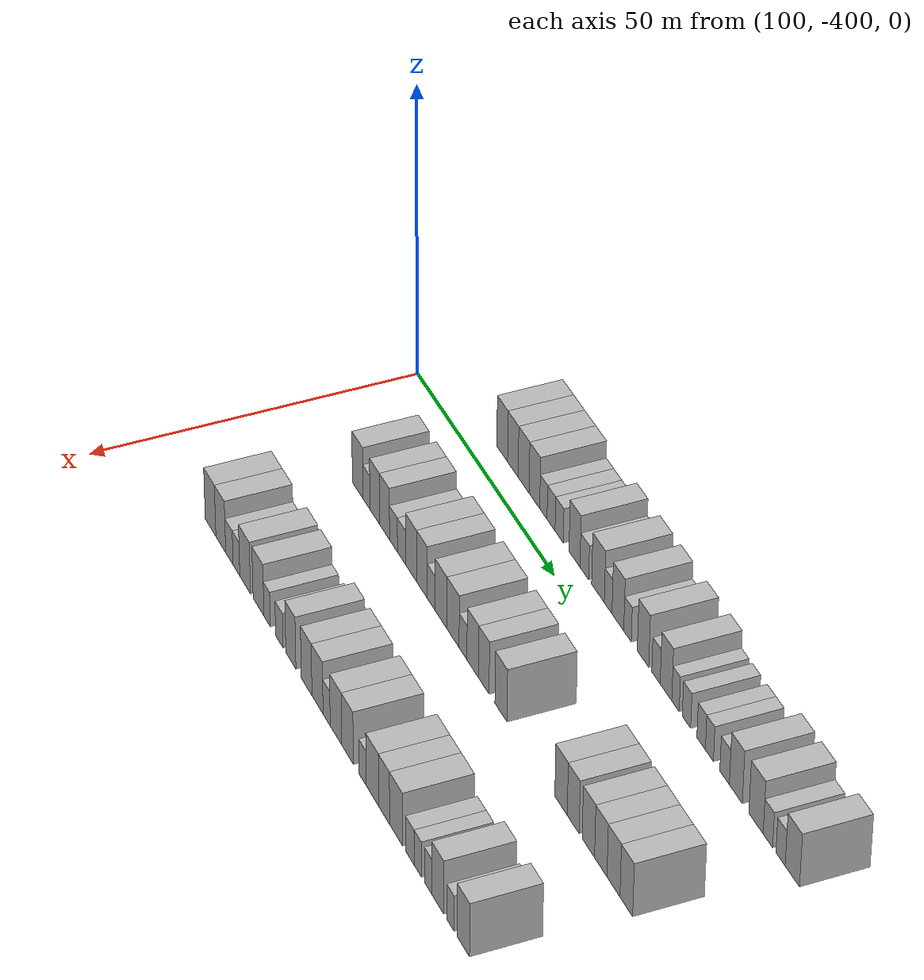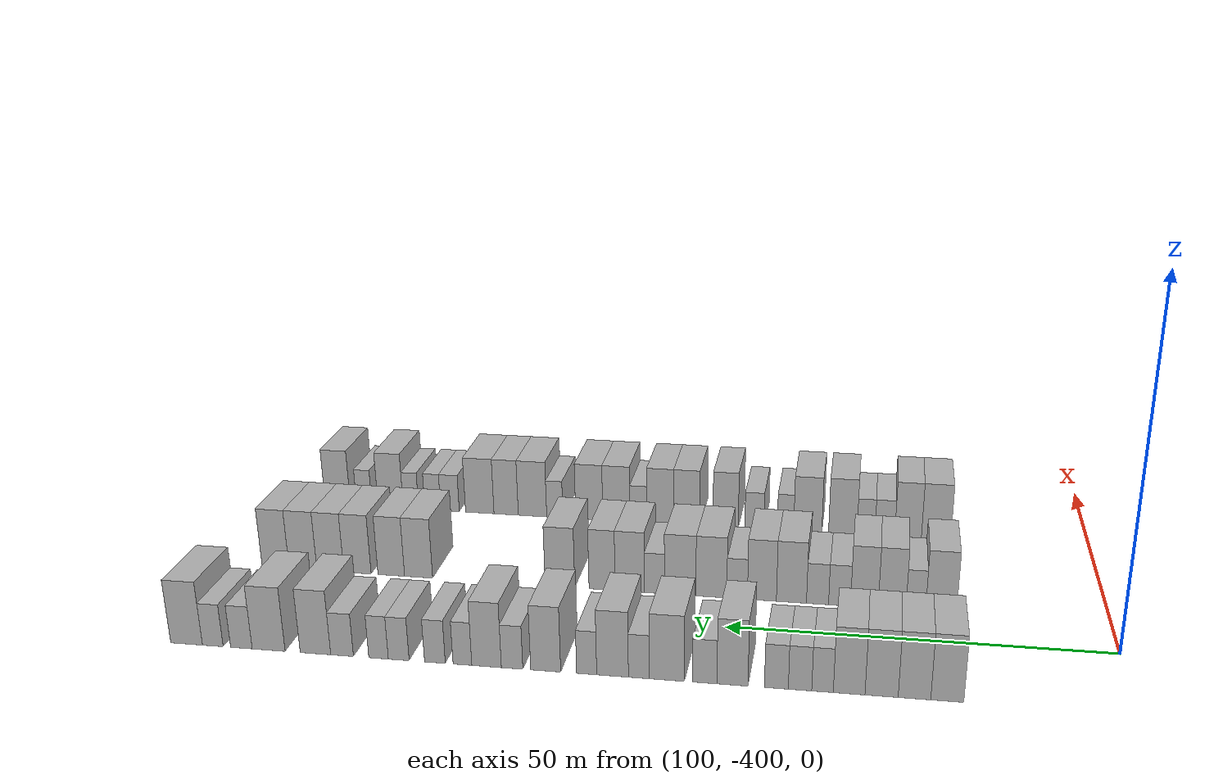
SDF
<sdf version="1.6">
 <world name="default">
  <model name="building_565">
   <static>1</static>
   <pose>91.0000 -378.0604 0 0.000000 0.000000 0.000000</pose>
   <link name="link">
    <pose>0 0 4.50 0 0 0</pose>
    <collision name="collision"><geometry><box><size>10.0000 3.8792 9.0000</size></box></geometry></collision>
    <visual name="visual">
     <cast_shadows>0</cast_shadows>
     <geometry><box><size>10.0000 3.8792 9.0000</size></box></geometry>
     <material>
      <script>
       <uri>model://HANNAS_wall/materials/scripts</uri>
       <uri>model://HANNAS_wall/materials/textures</uri>
       <name>vrc/HANNAS_wall</name>
      </script>
     </material>
    </visual>
   </link>
  </model>
  <model name="building_566">
   <static>1</static>
   <pose>91.0000 -374.2001 0 0.000000 0.000000 0.000000</pose>
   <link name="link">
    <pose>0 0 4.50 0 0 0</pose>
    <collision name="collision"><geometry><box><size>10.0000 3.8414 9.0000</size></box></geometry></collision>
    <visual name="visual">
     <cast_shadows>0</cast_shadows>
     <geometry><box><size>10.0000 3.8414 9.0000</size></box></geometry>
     <material>
      <script>
       <uri>model://HANNAS_wall/materials/scripts</uri>
       <uri>model://HANNAS_wall/materials/textures</uri>
       <name>vrc/HANNAS_wall</name>
      </script>
     </material>
    </visual>
   </link>
  </model>
  <model name="building_567">
   <static>1</static>
   <pose>91.0000 -370.3114 0 0.000000 0.000000 0.000000</pose>
   <link name="link">
    <pose>0 0 4.50 0 0 0</pose>
    <collision name="collision"><geometry><box><size>10.0000 3.9360 9.0000</size></box></geometry></collision>
    <visual name="visual">
     <cast_shadows>0</cast_shadows>
     <geometry><box><size>10.0000 3.9360 9.0000</size></box></geometry>
     <material>
      <script>
       <uri>model://HANNAS_wall/materials/scripts</uri>
       <uri>model://HANNAS_wall/materials/textures</uri>
       <name>vrc/HANNAS_wall</name>
      </script>
     </material>
    </visual>
   </link>
  </model>
  <model name="building_568">
   <static>1</static>
   <pose>91.0000 -366.4540 0 0.000000 0.000000 0.000000</pose>
   <link name="link">
    <pose>0 0 4.50 0 0 0</pose>
    <collision name="collision"><geometry><box><size>10.0000 3.7787 9.0000</size></box></geometry></collision>
    <visual name="visual">
     <cast_shadows>0</cast_shadows>
     <geometry><box><size>10.0000 3.7787 9.0000</size></box></geometry>
     <material>
      <script>
       <uri>model://HANNAS_wall/materials/scripts</uri>
       <uri>model://HANNAS_wall/materials/textures</uri>
       <name>vrc/HANNAS_wall</name>
      </script>
     </material>
    </visual>
   </link>
  </model>
  <model name="building_569">
   <static>1</static>
   <pose>91.0000 -363.2710 0 0.000000 0.000000 0.000000</pose>
   <link name="link">
    <pose>0 0 3.00 0 0 0</pose>
    <collision name="collision"><geometry><box><size>10.0000 2.5874 6.0000</size></box></geometry></collision>
    <visual name="visual">
     <cast_shadows>0</cast_shadows>
     <geometry><box><size>10.0000 2.5874 6.0000</size></box></geometry>
     <material>
      <script>
       <uri>model://HANNAS_wall/materials/scripts</uri>
       <uri>model://HANNAS_wall/materials/textures</uri>
       <name>vrc/HANNAS_wall</name>
      </script>
     </material>
    </visual>
   </link>
  </model>
  <model name="building_570">
   <static>1</static>
   <pose>91.0000 -360.5683 0 0.000000 0.000000 0.000000</pose>
   <link name="link">
    <pose>0 0 3.00 0 0 0</pose>
    <collision name="collision"><geometry><box><size>10.0000 2.8180 6.0000</size></box></geometry></collision>
    <visual name="visual">
     <cast_shadows>0</cast_shadows>
     <geometry><box><size>10.0000 2.8180 6.0000</size></box></geometry>
     <material>
      <script>
       <uri>model://HANNAS_wall/materials/scripts</uri>
       <uri>model://HANNAS_wall/materials/textures</uri>
       <name>vrc/HANNAS_wall</name>
      </script>
     </material>
    </visual>
   </link>
  </model>
  <model name="building_571">
   <static>1</static>
   <pose>91.0000 -357.7183 0 0.000000 0.000000 0.000000</pose>
   <link name="link">
    <pose>0 0 3.00 0 0 0</pose>
    <collision name="collision"><geometry><box><size>10.0000 2.8820 6.0000</size></box></geometry></collision>
    <visual name="visual">
     <cast_shadows>0</cast_shadows>
     <geometry><box><size>10.0000 2.8820 6.0000</size></box></geometry>
     <material>
      <script>
       <uri>model://HANNAS_wall/materials/scripts</uri>
       <uri>model://HANNAS_wall/materials/textures</uri>
       <name>vrc/HANNAS_wall</name>
      </script>
     </material>
    </visual>
   </link>
  </model>
  <model name="building_572">
   <static>1</static>
   <pose>91.0000 -352.3894 0 0.000000 0.000000 0.000000</pose>
   <link name="link">
    <pose>0 0 4.50 0 0 0</pose>
    <collision name="collision"><geometry><box><size>10.0000 3.7758 9.0000</size></box></geometry></collision>
    <visual name="visual">
     <cast_shadows>0</cast_shadows>
     <geometry><box><size>10.0000 3.7758 9.0000</size></box></geometry>
     <material>
      <script>
       <uri>model://HANNAS_wall/materials/scripts</uri>
       <uri>model://HANNAS_wall/materials/textures</uri>
       <name>vrc/HANNAS_wall</name>
      </script>
     </material>
    </visual>
   </link>
  </model>
  <model name="building_573">
   <static>1</static>
   <pose>91.0000 -349.0019 0 0.000000 0.000000 0.000000</pose>
   <link name="link">
    <pose>0 0 3.00 0 0 0</pose>
    <collision name="collision"><geometry><box><size>10.0000 2.9990 6.0000</size></box></geometry></collision>
    <visual name="visual">
     <cast_shadows>0</cast_shadows>
     <geometry><box><size>10.0000 2.9990 6.0000</size></box></geometry>
     <material>
      <script>
       <uri>model://HANNAS_wall/materials/scripts</uri>
       <uri>model://HANNAS_wall/materials/textures</uri>
       <name>vrc/HANNAS_wall</name>
      </script>
     </material>
    </visual>
   </link>
  </model>
  <model name="building_574">
   <static>1</static>
   <pose>91.0000 -344.3425 0 0.000000 0.000000 0.000000</pose>
   <link name="link">
    <pose>0 0 4.50 0 0 0</pose>
    <collision name="collision"><geometry><box><size>10.0000 4.3199 9.0000</size></box></geometry></collision>
    <visual name="visual">
     <cast_shadows>0</cast_shadows>
     <geometry><box><size>10.0000 4.3199 9.0000</size></box></geometry>
     <material>
      <script>
       <uri>model://HANNAS_wall/materials/scripts</uri>
       <uri>model://HANNAS_wall/materials/textures</uri>
       <name>vrc/HANNAS_wall</name>
      </script>
     </material>
    </visual>
   </link>
  </model>
  <model name="building_575">
   <static>1</static>
   <pose>91.0000 -340.8854 0 0.000000 0.000000 0.000000</pose>
   <link name="link">
    <pose>0 0 3.00 0 0 0</pose>
    <collision name="collision"><geometry><box><size>10.0000 2.5944 6.0000</size></box></geometry></collision>
    <visual name="visual">
     <cast_shadows>0</cast_shadows>
     <geometry><box><size>10.0000 2.5944 6.0000</size></box></geometry>
     <material>
      <script>
       <uri>model://HANNAS_wall/materials/scripts</uri>
       <uri>model://HANNAS_wall/materials/textures</uri>
       <name>vrc/HANNAS_wall</name>
      </script>
     </material>
    </visual>
   </link>
  </model>
  <model name="building_576">
   <static>1</static>
   <pose>91.0000 -337.6106 0 0.000000 0.000000 0.000000</pose>
   <link name="link">
    <pose>0 0 4.50 0 0 0</pose>
    <collision name="collision"><geometry><box><size>10.0000 3.9552 9.0000</size></box></geometry></collision>
    <visual name="visual">
     <cast_shadows>0</cast_shadows>
     <geometry><box><size>10.0000 3.9552 9.0000</size></box></geometry>
     <material>
      <script>
       <uri>model://HANNAS_wall/materials/scripts</uri>
       <uri>model://HANNAS_wall/materials/textures</uri>
       <name>vrc/HANNAS_wall</name>
      </script>
     </material>
    </visual>
   </link>
  </model>
  <model name="building_577">
   <static>1</static>
   <pose>91.0000 -334.3776 0 0.000000 0.000000 0.000000</pose>
   <link name="link">
    <pose>0 0 3.00 0 0 0</pose>
    <collision name="collision"><geometry><box><size>10.0000 2.5108 6.0000</size></box></geometry></collision>
    <visual name="visual">
     <cast_shadows>0</cast_shadows>
     <geometry><box><size>10.0000 2.5108 6.0000</size></box></geometry>
     <material>
      <script>
       <uri>model://HANNAS_wall/materials/scripts</uri>
       <uri>model://HANNAS_wall/materials/textures</uri>
       <name>vrc/HANNAS_wall</name>
      </script>
     </material>
    </visual>
   </link>
  </model>
  <model name="building_578">
   <static>1</static>
   <pose>91.0000 -329.2307 0 0.000000 0.000000 0.000000</pose>
   <link name="link">
    <pose>0 0 4.50 0 0 0</pose>
    <collision name="collision"><geometry><box><size>10.0000 3.7830 9.0000</size></box></geometry></collision>
    <visual name="visual">
     <cast_shadows>0</cast_shadows>
     <geometry><box><size>10.0000 3.7830 9.0000</size></box></geometry>
     <material>
      <script>
       <uri>model://HANNAS_wall/materials/scripts</uri>
       <uri>model://HANNAS_wall/materials/textures</uri>
       <name>vrc/HANNAS_wall</name>
      </script>
     </material>
    </visual>
   </link>
  </model>
  <model name="building_579">
   <static>1</static>
   <pose>91.0000 -324.9771 0 0.000000 0.000000 0.000000</pose>
   <link name="link">
    <pose>0 0 3.00 0 0 0</pose>
    <collision name="collision"><geometry><box><size>10.0000 2.7241 6.0000</size></box></geometry></collision>
    <visual name="visual">
     <cast_shadows>0</cast_shadows>
     <geometry><box><size>10.0000 2.7241 6.0000</size></box></geometry>
     <material>
      <script>
       <uri>model://HANNAS_wall/materials/scripts</uri>
       <uri>model://HANNAS_wall/materials/textures</uri>
       <name>vrc/HANNAS_wall</name>
      </script>
     </material>
    </visual>
   </link>
  </model>
  <model name="building_580">
   <static>1</static>
   <pose>91.0000 -321.7310 0 0.000000 0.000000 0.000000</pose>
   <link name="link">
    <pose>0 0 4.50 0 0 0</pose>
    <collision name="collision"><geometry><box><size>10.0000 3.7682 9.0000</size></box></geometry></collision>
    <visual name="visual">
     <cast_shadows>0</cast_shadows>
     <geometry><box><size>10.0000 3.7682 9.0000</size></box></geometry>
     <material>
      <script>
       <uri>model://HANNAS_wall/materials/scripts</uri>
       <uri>model://HANNAS_wall/materials/textures</uri>
       <name>vrc/HANNAS_wall</name>
      </script>
     </material>
    </visual>
   </link>
  </model>
  <model name="building_581">
   <static>1</static>
   <pose>91.0000 -318.6456 0 0.000000 0.000000 0.000000</pose>
   <link name="link">
    <pose>0 0 3.00 0 0 0</pose>
    <collision name="collision"><geometry><box><size>10.0000 2.4027 6.0000</size></box></geometry></collision>
    <visual name="visual">
     <cast_shadows>0</cast_shadows>
     <geometry><box><size>10.0000 2.4027 6.0000</size></box></geometry>
     <material>
      <script>
       <uri>model://HANNAS_wall/materials/scripts</uri>
       <uri>model://HANNAS_wall/materials/textures</uri>
       <name>vrc/HANNAS_wall</name>
      </script>
     </material>
    </visual>
   </link>
  </model>
  <model name="building_582">
   <static>1</static>
   <pose>91.0000 -315.1113 0 0.000000 0.000000 0.000000</pose>
   <link name="link">
    <pose>0 0 3.00 0 0 0</pose>
    <collision name="collision"><geometry><box><size>10.0000 2.6657 6.0000</size></box></geometry></collision>
    <visual name="visual">
     <cast_shadows>0</cast_shadows>
     <geometry><box><size>10.0000 2.6657 6.0000</size></box></geometry>
     <material>
      <script>
       <uri>model://HANNAS_wall/materials/scripts</uri>
       <uri>model://HANNAS_wall/materials/textures</uri>
       <name>vrc/HANNAS_wall</name>
      </script>
     </material>
    </visual>
   </link>
  </model>
  <model name="building_583">
   <static>1</static>
   <pose>91.0000 -310.4282 0 0.000000 0.000000 0.000000</pose>
   <link name="link">
    <pose>0 0 3.00 0 0 0</pose>
    <collision name="collision"><geometry><box><size>10.0000 2.7005 6.0000</size></box></geometry></collision>
    <visual name="visual">
     <cast_shadows>0</cast_shadows>
     <geometry><box><size>10.0000 2.7005 6.0000</size></box></geometry>
     <material>
      <script>
       <uri>model://HANNAS_wall/materials/scripts</uri>
       <uri>model://HANNAS_wall/materials/textures</uri>
       <name>vrc/HANNAS_wall</name>
      </script>
     </material>
    </visual>
   </link>
  </model>
  <model name="building_584">
   <static>1</static>
   <pose>91.0000 -307.8081 0 0.000000 0.000000 0.000000</pose>
   <link name="link">
    <pose>0 0 3.00 0 0 0</pose>
    <collision name="collision"><geometry><box><size>10.0000 2.5397 6.0000</size></box></geometry></collision>
    <visual name="visual">
     <cast_shadows>0</cast_shadows>
     <geometry><box><size>10.0000 2.5397 6.0000</size></box></geometry>
     <material>
      <script>
       <uri>model://HANNAS_wall/materials/scripts</uri>
       <uri>model://HANNAS_wall/materials/textures</uri>
       <name>vrc/HANNAS_wall</name>
      </script>
     </material>
    </visual>
   </link>
  </model>
  <model name="building_585">
   <static>1</static>
   <pose>91.0000 -303.0466 0 0.000000 0.000000 0.000000</pose>
   <link name="link">
    <pose>0 0 3.00 0 0 0</pose>
    <collision name="collision"><geometry><box><size>10.0000 2.9833 6.0000</size></box></geometry></collision>
    <visual name="visual">
     <cast_shadows>0</cast_shadows>
     <geometry><box><size>10.0000 2.9833 6.0000</size></box></geometry>
     <material>
      <script>
       <uri>model://HANNAS_wall/materials/scripts</uri>
       <uri>model://HANNAS_wall/materials/textures</uri>
       <name>vrc/HANNAS_wall</name>
      </script>
     </material>
    </visual>
   </link>
  </model>
  <model name="building_586">
   <static>1</static>
   <pose>91.0000 -299.5468 0 0.000000 0.000000 0.000000</pose>
   <link name="link">
    <pose>0 0 4.50 0 0 0</pose>
    <collision name="collision"><geometry><box><size>10.0000 4.0163 9.0000</size></box></geometry></collision>
    <visual name="visual">
     <cast_shadows>0</cast_shadows>
     <geometry><box><size>10.0000 4.0163 9.0000</size></box></geometry>
     <material>
      <script>
       <uri>model://HANNAS_wall/materials/scripts</uri>
       <uri>model://HANNAS_wall/materials/textures</uri>
       <name>vrc/HANNAS_wall</name>
      </script>
     </material>
    </visual>
   </link>
  </model>
  <model name="building_587">
   <static>1</static>
   <pose>91.0000 -293.3504 0 0.000000 0.000000 0.000000</pose>
   <link name="link">
    <pose>0 0 4.50 0 0 0</pose>
    <collision name="collision"><geometry><box><size>10.0000 4.3767 9.0000</size></box></geometry></collision>
    <visual name="visual">
     <cast_shadows>0</cast_shadows>
     <geometry><box><size>10.0000 4.3767 9.0000</size></box></geometry>
     <material>
      <script>
       <uri>model://HANNAS_wall/materials/scripts</uri>
       <uri>model://HANNAS_wall/materials/textures</uri>
       <name>vrc/HANNAS_wall</name>
      </script>
     </material>
    </visual>
   </link>
  </model>
  <model name="building_588">
   <static>1</static>
   <pose>91.0000 -289.7224 0 0.000000 0.000000 0.000000</pose>
   <link name="link">
    <pose>0 0 3.00 0 0 0</pose>
    <collision name="collision"><geometry><box><size>10.0000 2.8793 6.0000</size></box></geometry></collision>
    <visual name="visual">
     <cast_shadows>0</cast_shadows>
     <geometry><box><size>10.0000 2.8793 6.0000</size></box></geometry>
     <material>
      <script>
       <uri>model://HANNAS_wall/materials/scripts</uri>
       <uri>model://HANNAS_wall/materials/textures</uri>
       <name>vrc/HANNAS_wall</name>
      </script>
     </material>
    </visual>
   </link>
  </model>
  <model name="building_589">
   <static>1</static>
   <pose>91.0000 -285.8947 0 0.000000 0.000000 0.000000</pose>
   <link name="link">
    <pose>0 0 3.00 0 0 0</pose>
    <collision name="collision"><geometry><box><size>10.0000 2.7759 6.0000</size></box></geometry></collision>
    <visual name="visual">
     <cast_shadows>0</cast_shadows>
     <geometry><box><size>10.0000 2.7759 6.0000</size></box></geometry>
     <material>
      <script>
       <uri>model://HANNAS_wall/materials/scripts</uri>
       <uri>model://HANNAS_wall/materials/textures</uri>
       <name>vrc/HANNAS_wall</name>
      </script>
     </material>
    </visual>
   </link>
  </model>
  <model name="building_590">
   <static>1</static>
   <pose>91.0000 -282.3612 0 0.000000 0.000000 0.000000</pose>
   <link name="link">
    <pose>0 0 4.50 0 0 0</pose>
    <collision name="collision"><geometry><box><size>10.0000 4.2912 9.0000</size></box></geometry></collision>
    <visual name="visual">
     <cast_shadows>0</cast_shadows>
     <geometry><box><size>10.0000 4.2912 9.0000</size></box></geometry>
     <material>
      <script>
       <uri>model://HANNAS_wall/materials/scripts</uri>
       <uri>model://HANNAS_wall/materials/textures</uri>
       <name>vrc/HANNAS_wall</name>
      </script>
     </material>
    </visual>
   </link>
  </model>
  <model name="building_758">
   <static>1</static>
   <pose>113.0000 -377.9727 0 0.000000 0.000000 0.000000</pose>
   <link name="link">
    <pose>0 0 4.50 0 0 0</pose>
    <collision name="collision"><geometry><box><size>10.0000 4.0546 9.0000</size></box></geometry></collision>
    <visual name="visual">
     <cast_shadows>0</cast_shadows>
     <geometry><box><size>10.0000 4.0546 9.0000</size></box></geometry>
     <material>
      <script>
       <uri>model://HANNAS_wall/materials/scripts</uri>
       <uri>model://HANNAS_wall/materials/textures</uri>
       <name>vrc/HANNAS_wall</name>
      </script>
     </material>
    </visual>
   </link>
  </model>
  <model name="building_759">
   <static>1</static>
   <pose>113.0000 -374.6470 0 0.000000 0.000000 0.000000</pose>
   <link name="link">
    <pose>0 0 3.00 0 0 0</pose>
    <collision name="collision"><geometry><box><size>10.0000 2.5968 6.0000</size></box></geometry></collision>
    <visual name="visual">
     <cast_shadows>0</cast_shadows>
     <geometry><box><size>10.0000 2.5968 6.0000</size></box></geometry>
     <material>
      <script>
       <uri>model://HANNAS_wall/materials/scripts</uri>
       <uri>model://HANNAS_wall/materials/textures</uri>
       <name>vrc/HANNAS_wall</name>
      </script>
     </material>
    </visual>
   </link>
  </model>
  <model name="building_760">
   <static>1</static>
   <pose>113.0000 -371.5104 0 0.000000 0.000000 0.000000</pose>
   <link name="link">
    <pose>0 0 4.50 0 0 0</pose>
    <collision name="collision"><geometry><box><size>10.0000 3.6764 9.0000</size></box></geometry></collision>
    <visual name="visual">
     <cast_shadows>0</cast_shadows>
     <geometry><box><size>10.0000 3.6764 9.0000</size></box></geometry>
     <material>
      <script>
       <uri>model://HANNAS_wall/materials/scripts</uri>
       <uri>model://HANNAS_wall/materials/textures</uri>
       <name>vrc/HANNAS_wall</name>
      </script>
     </material>
    </visual>
   </link>
  </model>
  <model name="building_761">
   <static>1</static>
   <pose>113.0000 -367.8312 0 0.000000 0.000000 0.000000</pose>
   <link name="link">
    <pose>0 0 4.50 0 0 0</pose>
    <collision name="collision"><geometry><box><size>10.0000 3.6820 9.0000</size></box></geometry></collision>
    <visual name="visual">
     <cast_shadows>0</cast_shadows>
     <geometry><box><size>10.0000 3.6820 9.0000</size></box></geometry>
     <material>
      <script>
       <uri>model://HANNAS_wall/materials/scripts</uri>
       <uri>model://HANNAS_wall/materials/textures</uri>
       <name>vrc/HANNAS_wall</name>
      </script>
     </material>
    </visual>
   </link>
  </model>
  <model name="building_762">
   <static>1</static>
   <pose>113.0000 -364.5283 0 0.000000 0.000000 0.000000</pose>
   <link name="link">
    <pose>0 0 3.00 0 0 0</pose>
    <collision name="collision"><geometry><box><size>10.0000 2.9238 6.0000</size></box></geometry></collision>
    <visual name="visual">
     <cast_shadows>0</cast_shadows>
     <geometry><box><size>10.0000 2.9238 6.0000</size></box></geometry>
     <material>
      <script>
       <uri>model://HANNAS_wall/materials/scripts</uri>
       <uri>model://HANNAS_wall/materials/textures</uri>
       <name>vrc/HANNAS_wall</name>
      </script>
     </material>
    </visual>
   </link>
  </model>
  <model name="building_763">
   <static>1</static>
   <pose>113.0000 -361.5855 0 0.000000 0.000000 0.000000</pose>
   <link name="link">
    <pose>0 0 3.00 0 0 0</pose>
    <collision name="collision"><geometry><box><size>10.0000 2.9618 6.0000</size></box></geometry></collision>
    <visual name="visual">
     <cast_shadows>0</cast_shadows>
     <geometry><box><size>10.0000 2.9618 6.0000</size></box></geometry>
     <material>
      <script>
       <uri>model://HANNAS_wall/materials/scripts</uri>
       <uri>model://HANNAS_wall/materials/textures</uri>
       <name>vrc/HANNAS_wall</name>
      </script>
     </material>
    </visual>
   </link>
  </model>
  <model name="building_764">
   <static>1</static>
   <pose>113.0000 -358.0766 0 0.000000 0.000000 0.000000</pose>
   <link name="link">
    <pose>0 0 4.50 0 0 0</pose>
    <collision name="collision"><geometry><box><size>10.0000 4.0561 9.0000</size></box></geometry></collision>
    <visual name="visual">
     <cast_shadows>0</cast_shadows>
     <geometry><box><size>10.0000 4.0561 9.0000</size></box></geometry>
     <material>
      <script>
       <uri>model://HANNAS_wall/materials/scripts</uri>
       <uri>model://HANNAS_wall/materials/textures</uri>
       <name>vrc/HANNAS_wall</name>
      </script>
     </material>
    </visual>
   </link>
  </model>
  <model name="building_765">
   <static>1</static>
   <pose>113.0000 -354.0857 0 0.000000 0.000000 0.000000</pose>
   <link name="link">
    <pose>0 0 4.50 0 0 0</pose>
    <collision name="collision"><geometry><box><size>10.0000 3.9256 9.0000</size></box></geometry></collision>
    <visual name="visual">
     <cast_shadows>0</cast_shadows>
     <geometry><box><size>10.0000 3.9256 9.0000</size></box></geometry>
     <material>
      <script>
       <uri>model://HANNAS_wall/materials/scripts</uri>
       <uri>model://HANNAS_wall/materials/textures</uri>
       <name>vrc/HANNAS_wall</name>
      </script>
     </material>
    </visual>
   </link>
  </model>
  <model name="building_766">
   <static>1</static>
   <pose>113.0000 -350.7199 0 0.000000 0.000000 0.000000</pose>
   <link name="link">
    <pose>0 0 3.00 0 0 0</pose>
    <collision name="collision"><geometry><box><size>10.0000 2.8061 6.0000</size></box></geometry></collision>
    <visual name="visual">
     <cast_shadows>0</cast_shadows>
     <geometry><box><size>10.0000 2.8061 6.0000</size></box></geometry>
     <material>
      <script>
       <uri>model://HANNAS_wall/materials/scripts</uri>
       <uri>model://HANNAS_wall/materials/textures</uri>
       <name>vrc/HANNAS_wall</name>
      </script>
     </material>
    </visual>
   </link>
  </model>
  <model name="building_767">
   <static>1</static>
   <pose>113.0000 -347.2083 0 0.000000 0.000000 0.000000</pose>
   <link name="link">
    <pose>0 0 4.50 0 0 0</pose>
    <collision name="collision"><geometry><box><size>10.0000 4.2170 9.0000</size></box></geometry></collision>
    <visual name="visual">
     <cast_shadows>0</cast_shadows>
     <geometry><box><size>10.0000 4.2170 9.0000</size></box></geometry>
     <material>
      <script>
       <uri>model://HANNAS_wall/materials/scripts</uri>
       <uri>model://HANNAS_wall/materials/textures</uri>
       <name>vrc/HANNAS_wall</name>
      </script>
     </material>
    </visual>
   </link>
  </model>
  <model name="building_768">
   <static>1</static>
   <pose>113.0000 -342.9331 0 0.000000 0.000000 0.000000</pose>
   <link name="link">
    <pose>0 0 4.50 0 0 0</pose>
    <collision name="collision"><geometry><box><size>10.0000 4.3333 9.0000</size></box></geometry></collision>
    <visual name="visual">
     <cast_shadows>0</cast_shadows>
     <geometry><box><size>10.0000 4.3333 9.0000</size></box></geometry>
     <material>
      <script>
       <uri>model://HANNAS_wall/materials/scripts</uri>
       <uri>model://HANNAS_wall/materials/textures</uri>
       <name>vrc/HANNAS_wall</name>
      </script>
     </material>
    </visual>
   </link>
  </model>
  <model name="building_769">
   <static>1</static>
   <pose>113.0000 -339.3807 0 0.000000 0.000000 0.000000</pose>
   <link name="link">
    <pose>0 0 3.00 0 0 0</pose>
    <collision name="collision"><geometry><box><size>10.0000 2.7716 6.0000</size></box></geometry></collision>
    <visual name="visual">
     <cast_shadows>0</cast_shadows>
     <geometry><box><size>10.0000 2.7716 6.0000</size></box></geometry>
     <material>
      <script>
       <uri>model://HANNAS_wall/materials/scripts</uri>
       <uri>model://HANNAS_wall/materials/textures</uri>
       <name>vrc/HANNAS_wall</name>
      </script>
     </material>
    </visual>
   </link>
  </model>
  <model name="building_770">
   <static>1</static>
   <pose>113.0000 -335.9632 0 0.000000 0.000000 0.000000</pose>
   <link name="link">
    <pose>0 0 4.50 0 0 0</pose>
    <collision name="collision"><geometry><box><size>10.0000 4.0632 9.0000</size></box></geometry></collision>
    <visual name="visual">
     <cast_shadows>0</cast_shadows>
     <geometry><box><size>10.0000 4.0632 9.0000</size></box></geometry>
     <material>
      <script>
       <uri>model://HANNAS_wall/materials/scripts</uri>
       <uri>model://HANNAS_wall/materials/textures</uri>
       <name>vrc/HANNAS_wall</name>
      </script>
     </material>
    </visual>
   </link>
  </model>
  <model name="building_771">
   <static>1</static>
   <pose>113.0000 -332.1121 0 0.000000 0.000000 0.000000</pose>
   <link name="link">
    <pose>0 0 4.50 0 0 0</pose>
    <collision name="collision"><geometry><box><size>10.0000 3.6390 9.0000</size></box></geometry></collision>
    <visual name="visual">
     <cast_shadows>0</cast_shadows>
     <geometry><box><size>10.0000 3.6390 9.0000</size></box></geometry>
     <material>
      <script>
       <uri>model://HANNAS_wall/materials/scripts</uri>
       <uri>model://HANNAS_wall/materials/textures</uri>
       <name>vrc/HANNAS_wall</name>
      </script>
     </material>
    </visual>
   </link>
  </model>
  <model name="building_772">
   <static>1</static>
   <pose>113.0000 -326.2152 0 0.000000 0.000000 0.000000</pose>
   <link name="link">
    <pose>0 0 4.50 0 0 0</pose>
    <collision name="collision"><geometry><box><size>10.0000 4.1548 9.0000</size></box></geometry></collision>
    <visual name="visual">
     <cast_shadows>0</cast_shadows>
     <geometry><box><size>10.0000 4.1548 9.0000</size></box></geometry>
     <material>
      <script>
       <uri>model://HANNAS_wall/materials/scripts</uri>
       <uri>model://HANNAS_wall/materials/textures</uri>
       <name>vrc/HANNAS_wall</name>
      </script>
     </material>
    </visual>
   </link>
  </model>
  <model name="building_773">
   <static>1</static>
   <pose>113.0000 -306.0601 0 0.000000 0.000000 0.000000</pose>
   <link name="link">
    <pose>0 0 4.50 0 0 0</pose>
    <collision name="collision"><geometry><box><size>10.0000 4.0518 9.0000</size></box></geometry></collision>
    <visual name="visual">
     <cast_shadows>0</cast_shadows>
     <geometry><box><size>10.0000 4.0518 9.0000</size></box></geometry>
     <material>
      <script>
       <uri>model://HANNAS_wall/materials/scripts</uri>
       <uri>model://HANNAS_wall/materials/textures</uri>
       <name>vrc/HANNAS_wall</name>
      </script>
     </material>
    </visual>
   </link>
  </model>
  <model name="building_774">
   <static>1</static>
   <pose>113.0000 -302.1028 0 0.000000 0.000000 0.000000</pose>
   <link name="link">
    <pose>0 0 4.50 0 0 0</pose>
    <collision name="collision"><geometry><box><size>10.0000 3.8627 9.0000</size></box></geometry></collision>
    <visual name="visual">
     <cast_shadows>0</cast_shadows>
     <geometry><box><size>10.0000 3.8627 9.0000</size></box></geometry>
     <material>
      <script>
       <uri>model://HANNAS_wall/materials/scripts</uri>
       <uri>model://HANNAS_wall/materials/textures</uri>
       <name>vrc/HANNAS_wall</name>
      </script>
     </material>
    </visual>
   </link>
  </model>
  <model name="building_775">
   <static>1</static>
   <pose>113.0000 -297.1818 0 0.000000 0.000000 0.000000</pose>
   <link name="link">
    <pose>0 0 4.50 0 0 0</pose>
    <collision name="collision"><geometry><box><size>10.0000 3.9794 9.0000</size></box></geometry></collision>
    <visual name="visual">
     <cast_shadows>0</cast_shadows>
     <geometry><box><size>10.0000 3.9794 9.0000</size></box></geometry>
     <material>
      <script>
       <uri>model://HANNAS_wall/materials/scripts</uri>
       <uri>model://HANNAS_wall/materials/textures</uri>
       <name>vrc/HANNAS_wall</name>
      </script>
     </material>
    </visual>
   </link>
  </model>
  <model name="building_776">
   <static>1</static>
   <pose>113.0000 -293.2146 0 0.000000 0.000000 0.000000</pose>
   <link name="link">
    <pose>0 0 4.50 0 0 0</pose>
    <collision name="collision"><geometry><box><size>10.0000 3.9549 9.0000</size></box></geometry></collision>
    <visual name="visual">
     <cast_shadows>0</cast_shadows>
     <geometry><box><size>10.0000 3.9549 9.0000</size></box></geometry>
     <material>
      <script>
       <uri>model://HANNAS_wall/materials/scripts</uri>
       <uri>model://HANNAS_wall/materials/textures</uri>
       <name>vrc/HANNAS_wall</name>
      </script>
     </material>
    </visual>
   </link>
  </model>
  <model name="building_777">
   <static>1</static>
   <pose>113.0000 -289.1839 0 0.000000 0.000000 0.000000</pose>
   <link name="link">
    <pose>0 0 4.50 0 0 0</pose>
    <collision name="collision"><geometry><box><size>10.0000 4.1066 9.0000</size></box></geometry></collision>
    <visual name="visual">
     <cast_shadows>0</cast_shadows>
     <geometry><box><size>10.0000 4.1066 9.0000</size></box></geometry>
     <material>
      <script>
       <uri>model://HANNAS_wall/materials/scripts</uri>
       <uri>model://HANNAS_wall/materials/textures</uri>
       <name>vrc/HANNAS_wall</name>
      </script>
     </material>
    </visual>
   </link>
  </model>
  <model name="building_778">
   <static>1</static>
   <pose>113.0000 -285.1345 0 0.000000 0.000000 0.000000</pose>
   <link name="link">
    <pose>0 0 4.50 0 0 0</pose>
    <collision name="collision"><geometry><box><size>10.0000 3.9923 9.0000</size></box></geometry></collision>
    <visual name="visual">
     <cast_shadows>0</cast_shadows>
     <geometry><box><size>10.0000 3.9923 9.0000</size></box></geometry>
     <material>
      <script>
       <uri>model://HANNAS_wall/materials/scripts</uri>
       <uri>model://HANNAS_wall/materials/textures</uri>
       <name>vrc/HANNAS_wall</name>
      </script>
     </material>
    </visual>
   </link>
  </model>
  <model name="building_945">
   <static>1</static>
   <pose>135.0000 -377.8745 0 0.000000 0.000000 0.000000</pose>
   <link name="link">
    <pose>0 0 4.50 0 0 0</pose>
    <collision name="collision"><geometry><box><size>10.0000 4.2509 9.0000</size></box></geometry></collision>
    <visual name="visual">
     <cast_shadows>0</cast_shadows>
     <geometry><box><size>10.0000 4.2509 9.0000</size></box></geometry>
     <material>
      <script>
       <uri>model://HANNAS_wall/materials/scripts</uri>
       <uri>model://HANNAS_wall/materials/textures</uri>
       <name>vrc/HANNAS_wall</name>
      </script>
     </material>
    </visual>
   </link>
  </model>
  <model name="building_946">
   <static>1</static>
   <pose>135.0000 -373.8022 0 0.000000 0.000000 0.000000</pose>
   <link name="link">
    <pose>0 0 4.50 0 0 0</pose>
    <collision name="collision"><geometry><box><size>10.0000 3.8938 9.0000</size></box></geometry></collision>
    <visual name="visual">
     <cast_shadows>0</cast_shadows>
     <geometry><box><size>10.0000 3.8938 9.0000</size></box></geometry>
     <material>
      <script>
       <uri>model://HANNAS_wall/materials/scripts</uri>
       <uri>model://HANNAS_wall/materials/textures</uri>
       <name>vrc/HANNAS_wall</name>
      </script>
     </material>
    </visual>
   </link>
  </model>
  <model name="building_947">
   <static>1</static>
   <pose>135.0000 -370.3984 0 0.000000 0.000000 0.000000</pose>
   <link name="link">
    <pose>0 0 3.00 0 0 0</pose>
    <collision name="collision"><geometry><box><size>10.0000 2.9139 6.0000</size></box></geometry></collision>
    <visual name="visual">
     <cast_shadows>0</cast_shadows>
     <geometry><box><size>10.0000 2.9139 6.0000</size></box></geometry>
     <material>
      <script>
       <uri>model://HANNAS_wall/materials/scripts</uri>
       <uri>model://HANNAS_wall/materials/textures</uri>
       <name>vrc/HANNAS_wall</name>
      </script>
     </material>
    </visual>
   </link>
  </model>
  <model name="building_948">
   <static>1</static>
   <pose>135.0000 -367.6275 0 0.000000 0.000000 0.000000</pose>
   <link name="link">
    <pose>0 0 3.00 0 0 0</pose>
    <collision name="collision"><geometry><box><size>10.0000 2.6278 6.0000</size></box></geometry></collision>
    <visual name="visual">
     <cast_shadows>0</cast_shadows>
     <geometry><box><size>10.0000 2.6278 6.0000</size></box></geometry>
     <material>
      <script>
       <uri>model://HANNAS_wall/materials/scripts</uri>
       <uri>model://HANNAS_wall/materials/textures</uri>
       <name>vrc/HANNAS_wall</name>
      </script>
     </material>
    </visual>
   </link>
  </model>
  <model name="building_949">
   <static>1</static>
   <pose>135.0000 -364.2233 0 0.000000 0.000000 0.000000</pose>
   <link name="link">
    <pose>0 0 4.50 0 0 0</pose>
    <collision name="collision"><geometry><box><size>10.0000 4.1807 9.0000</size></box></geometry></collision>
    <visual name="visual">
     <cast_shadows>0</cast_shadows>
     <geometry><box><size>10.0000 4.1807 9.0000</size></box></geometry>
     <material>
      <script>
       <uri>model://HANNAS_wall/materials/scripts</uri>
       <uri>model://HANNAS_wall/materials/textures</uri>
       <name>vrc/HANNAS_wall</name>
      </script>
     </material>
    </visual>
   </link>
  </model>
  <model name="building_950">
   <static>1</static>
   <pose>135.0000 -359.0399 0 0.000000 0.000000 0.000000</pose>
   <link name="link">
    <pose>0 0 4.50 0 0 0</pose>
    <collision name="collision"><geometry><box><size>10.0000 4.1862 9.0000</size></box></geometry></collision>
    <visual name="visual">
     <cast_shadows>0</cast_shadows>
     <geometry><box><size>10.0000 4.1862 9.0000</size></box></geometry>
     <material>
      <script>
       <uri>model://HANNAS_wall/materials/scripts</uri>
       <uri>model://HANNAS_wall/materials/textures</uri>
       <name>vrc/HANNAS_wall</name>
      </script>
     </material>
    </visual>
   </link>
  </model>
  <model name="building_951">
   <static>1</static>
   <pose>135.0000 -355.7284 0 0.000000 0.000000 0.000000</pose>
   <link name="link">
    <pose>0 0 3.00 0 0 0</pose>
    <collision name="collision"><geometry><box><size>10.0000 2.4367 6.0000</size></box></geometry></collision>
    <visual name="visual">
     <cast_shadows>0</cast_shadows>
     <geometry><box><size>10.0000 2.4367 6.0000</size></box></geometry>
     <material>
      <script>
       <uri>model://HANNAS_wall/materials/scripts</uri>
       <uri>model://HANNAS_wall/materials/textures</uri>
       <name>vrc/HANNAS_wall</name>
      </script>
     </material>
    </visual>
   </link>
  </model>
  <model name="building_952">
   <static>1</static>
   <pose>135.0000 -351.0850 0 0.000000 0.000000 0.000000</pose>
   <link name="link">
    <pose>0 0 3.00 0 0 0</pose>
    <collision name="collision"><geometry><box><size>10.0000 2.8501 6.0000</size></box></geometry></collision>
    <visual name="visual">
     <cast_shadows>0</cast_shadows>
     <geometry><box><size>10.0000 2.8501 6.0000</size></box></geometry>
     <material>
      <script>
       <uri>model://HANNAS_wall/materials/scripts</uri>
       <uri>model://HANNAS_wall/materials/textures</uri>
       <name>vrc/HANNAS_wall</name>
      </script>
     </material>
    </visual>
   </link>
  </model>
  <model name="building_953">
   <static>1</static>
   <pose>135.0000 -346.7562 0 0.000000 0.000000 0.000000</pose>
   <link name="link">
    <pose>0 0 4.50 0 0 0</pose>
    <collision name="collision"><geometry><box><size>10.0000 3.8076 9.0000</size></box></geometry></collision>
    <visual name="visual">
     <cast_shadows>0</cast_shadows>
     <geometry><box><size>10.0000 3.8076 9.0000</size></box></geometry>
     <material>
      <script>
       <uri>model://HANNAS_wall/materials/scripts</uri>
       <uri>model://HANNAS_wall/materials/textures</uri>
       <name>vrc/HANNAS_wall</name>
      </script>
     </material>
    </visual>
   </link>
  </model>
  <model name="building_954">
   <static>1</static>
   <pose>135.0000 -340.8699 0 0.000000 0.000000 0.000000</pose>
   <link name="link">
    <pose>0 0 4.50 0 0 0</pose>
    <collision name="collision"><geometry><box><size>10.0000 3.9648 9.0000</size></box></geometry></collision>
    <visual name="visual">
     <cast_shadows>0</cast_shadows>
     <geometry><box><size>10.0000 3.9648 9.0000</size></box></geometry>
     <material>
      <script>
       <uri>model://HANNAS_wall/materials/scripts</uri>
       <uri>model://HANNAS_wall/materials/textures</uri>
       <name>vrc/HANNAS_wall</name>
      </script>
     </material>
    </visual>
   </link>
  </model>
  <model name="building_955">
   <static>1</static>
   <pose>135.0000 -336.8516 0 0.000000 0.000000 0.000000</pose>
   <link name="link">
    <pose>0 0 4.50 0 0 0</pose>
    <collision name="collision"><geometry><box><size>10.0000 4.0718 9.0000</size></box></geometry></collision>
    <visual name="visual">
     <cast_shadows>0</cast_shadows>
     <geometry><box><size>10.0000 4.0718 9.0000</size></box></geometry>
     <material>
      <script>
       <uri>model://HANNAS_wall/materials/scripts</uri>
       <uri>model://HANNAS_wall/materials/textures</uri>
       <name>vrc/HANNAS_wall</name>
      </script>
     </material>
    </visual>
   </link>
  </model>
  <model name="building_956">
   <static>1</static>
   <pose>135.0000 -333.5120 0 0.000000 0.000000 0.000000</pose>
   <link name="link">
    <pose>0 0 3.00 0 0 0</pose>
    <collision name="collision"><geometry><box><size>10.0000 2.6076 6.0000</size></box></geometry></collision>
    <visual name="visual">
     <cast_shadows>0</cast_shadows>
     <geometry><box><size>10.0000 2.6076 6.0000</size></box></geometry>
     <material>
      <script>
       <uri>model://HANNAS_wall/materials/scripts</uri>
       <uri>model://HANNAS_wall/materials/textures</uri>
       <name>vrc/HANNAS_wall</name>
      </script>
     </material>
    </visual>
   </link>
  </model>
  <model name="building_957">
   <static>1</static>
   <pose>135.0000 -330.1196 0 0.000000 0.000000 0.000000</pose>
   <link name="link">
    <pose>0 0 4.50 0 0 0</pose>
    <collision name="collision"><geometry><box><size>10.0000 4.1772 9.0000</size></box></geometry></collision>
    <visual name="visual">
     <cast_shadows>0</cast_shadows>
     <geometry><box><size>10.0000 4.1772 9.0000</size></box></geometry>
     <material>
      <script>
       <uri>model://HANNAS_wall/materials/scripts</uri>
       <uri>model://HANNAS_wall/materials/textures</uri>
       <name>vrc/HANNAS_wall</name>
      </script>
     </material>
    </visual>
   </link>
  </model>
  <model name="building_958">
   <static>1</static>
   <pose>135.0000 -325.9363 0 0.000000 0.000000 0.000000</pose>
   <link name="link">
    <pose>0 0 4.50 0 0 0</pose>
    <collision name="collision"><geometry><box><size>10.0000 4.1894 9.0000</size></box></geometry></collision>
    <visual name="visual">
     <cast_shadows>0</cast_shadows>
     <geometry><box><size>10.0000 4.1894 9.0000</size></box></geometry>
     <material>
      <script>
       <uri>model://HANNAS_wall/materials/scripts</uri>
       <uri>model://HANNAS_wall/materials/textures</uri>
       <name>vrc/HANNAS_wall</name>
      </script>
     </material>
    </visual>
   </link>
  </model>
  <model name="building_959">
   <static>1</static>
   <pose>135.0000 -320.5856 0 0.000000 0.000000 0.000000</pose>
   <link name="link">
    <pose>0 0 3.00 0 0 0</pose>
    <collision name="collision"><geometry><box><size>10.0000 2.5120 6.0000</size></box></geometry></collision>
    <visual name="visual">
     <cast_shadows>0</cast_shadows>
     <geometry><box><size>10.0000 2.5120 6.0000</size></box></geometry>
     <material>
      <script>
       <uri>model://HANNAS_wall/materials/scripts</uri>
       <uri>model://HANNAS_wall/materials/textures</uri>
       <name>vrc/HANNAS_wall</name>
      </script>
     </material>
    </visual>
   </link>
  </model>
  <model name="building_960">
   <static>1</static>
   <pose>135.0000 -317.1096 0 0.000000 0.000000 0.000000</pose>
   <link name="link">
    <pose>0 0 4.50 0 0 0</pose>
    <collision name="collision"><geometry><box><size>10.0000 4.4400 9.0000</size></box></geometry></collision>
    <visual name="visual">
     <cast_shadows>0</cast_shadows>
     <geometry><box><size>10.0000 4.4400 9.0000</size></box></geometry>
     <material>
      <script>
       <uri>model://HANNAS_wall/materials/scripts</uri>
       <uri>model://HANNAS_wall/materials/textures</uri>
       <name>vrc/HANNAS_wall</name>
      </script>
     </material>
    </visual>
   </link>
  </model>
  <model name="building_961">
   <static>1</static>
   <pose>135.0000 -312.9799 0 0.000000 0.000000 0.000000</pose>
   <link name="link">
    <pose>0 0 4.50 0 0 0</pose>
    <collision name="collision"><geometry><box><size>10.0000 3.8194 9.0000</size></box></geometry></collision>
    <visual name="visual">
     <cast_shadows>0</cast_shadows>
     <geometry><box><size>10.0000 3.8194 9.0000</size></box></geometry>
     <material>
      <script>
       <uri>model://HANNAS_wall/materials/scripts</uri>
       <uri>model://HANNAS_wall/materials/textures</uri>
       <name>vrc/HANNAS_wall</name>
      </script>
     </material>
    </visual>
   </link>
  </model>
  <model name="building_962">
   <static>1</static>
   <pose>135.0000 -308.8278 0 0.000000 0.000000 0.000000</pose>
   <link name="link">
    <pose>0 0 4.50 0 0 0</pose>
    <collision name="collision"><geometry><box><size>10.0000 4.4848 9.0000</size></box></geometry></collision>
    <visual name="visual">
     <cast_shadows>0</cast_shadows>
     <geometry><box><size>10.0000 4.4848 9.0000</size></box></geometry>
     <material>
      <script>
       <uri>model://HANNAS_wall/materials/scripts</uri>
       <uri>model://HANNAS_wall/materials/textures</uri>
       <name>vrc/HANNAS_wall</name>
      </script>
     </material>
    </visual>
   </link>
  </model>
  <model name="building_963">
   <static>1</static>
   <pose>135.0000 -304.1134 0 0.000000 0.000000 0.000000</pose>
   <link name="link">
    <pose>0 0 3.00 0 0 0</pose>
    <collision name="collision"><geometry><box><size>10.0000 2.9440 6.0000</size></box></geometry></collision>
    <visual name="visual">
     <cast_shadows>0</cast_shadows>
     <geometry><box><size>10.0000 2.9440 6.0000</size></box></geometry>
     <material>
      <script>
       <uri>model://HANNAS_wall/materials/scripts</uri>
       <uri>model://HANNAS_wall/materials/textures</uri>
       <name>vrc/HANNAS_wall</name>
      </script>
     </material>
    </visual>
   </link>
  </model>
  <model name="building_964">
   <static>1</static>
   <pose>135.0000 -301.3885 0 0.000000 0.000000 0.000000</pose>
   <link name="link">
    <pose>0 0 3.00 0 0 0</pose>
    <collision name="collision"><geometry><box><size>10.0000 2.5059 6.0000</size></box></geometry></collision>
    <visual name="visual">
     <cast_shadows>0</cast_shadows>
     <geometry><box><size>10.0000 2.5059 6.0000</size></box></geometry>
     <material>
      <script>
       <uri>model://HANNAS_wall/materials/scripts</uri>
       <uri>model://HANNAS_wall/materials/textures</uri>
       <name>vrc/HANNAS_wall</name>
      </script>
     </material>
    </visual>
   </link>
  </model>
  <model name="building_965">
   <static>1</static>
   <pose>135.0000 -297.9079 0 0.000000 0.000000 0.000000</pose>
   <link name="link">
    <pose>0 0 3.00 0 0 0</pose>
    <collision name="collision"><geometry><box><size>10.0000 2.4553 6.0000</size></box></geometry></collision>
    <visual name="visual">
     <cast_shadows>0</cast_shadows>
     <geometry><box><size>10.0000 2.4553 6.0000</size></box></geometry>
     <material>
      <script>
       <uri>model://HANNAS_wall/materials/scripts</uri>
       <uri>model://HANNAS_wall/materials/textures</uri>
       <name>vrc/HANNAS_wall</name>
      </script>
     </material>
    </visual>
   </link>
  </model>
  <model name="building_966">
   <static>1</static>
   <pose>135.0000 -294.6593 0 0.000000 0.000000 0.000000</pose>
   <link name="link">
    <pose>0 0 4.50 0 0 0</pose>
    <collision name="collision"><geometry><box><size>10.0000 4.0418 9.0000</size></box></geometry></collision>
    <visual name="visual">
     <cast_shadows>0</cast_shadows>
     <geometry><box><size>10.0000 4.0418 9.0000</size></box></geometry>
     <material>
      <script>
       <uri>model://HANNAS_wall/materials/scripts</uri>
       <uri>model://HANNAS_wall/materials/textures</uri>
       <name>vrc/HANNAS_wall</name>
      </script>
     </material>
    </visual>
   </link>
  </model>
  <model name="building_967">
   <static>1</static>
   <pose>135.0000 -290.4038 0 0.000000 0.000000 0.000000</pose>
   <link name="link">
    <pose>0 0 3.00 0 0 0</pose>
    <collision name="collision"><geometry><box><size>10.0000 2.4691 6.0000</size></box></geometry></collision>
    <visual name="visual">
     <cast_shadows>0</cast_shadows>
     <geometry><box><size>10.0000 2.4691 6.0000</size></box></geometry>
     <material>
      <script>
       <uri>model://HANNAS_wall/materials/scripts</uri>
       <uri>model://HANNAS_wall/materials/textures</uri>
       <name>vrc/HANNAS_wall</name>
      </script>
     </material>
    </visual>
   </link>
  </model>
  <model name="building_968">
   <static>1</static>
   <pose>135.0000 -286.1298 0 0.000000 0.000000 0.000000</pose>
   <link name="link">
    <pose>0 0 4.50 0 0 0</pose>
    <collision name="collision"><geometry><box><size>10.0000 4.0789 9.0000</size></box></geometry></collision>
    <visual name="visual">
     <cast_shadows>0</cast_shadows>
     <geometry><box><size>10.0000 4.0789 9.0000</size></box></geometry>
     <material>
      <script>
       <uri>model://HANNAS_wall/materials/scripts</uri>
       <uri>model://HANNAS_wall/materials/textures</uri>
       <name>vrc/HANNAS_wall</name>
      </script>
     </material>
    </visual>
   </link>
  </model>
 </world>
</sdf>
